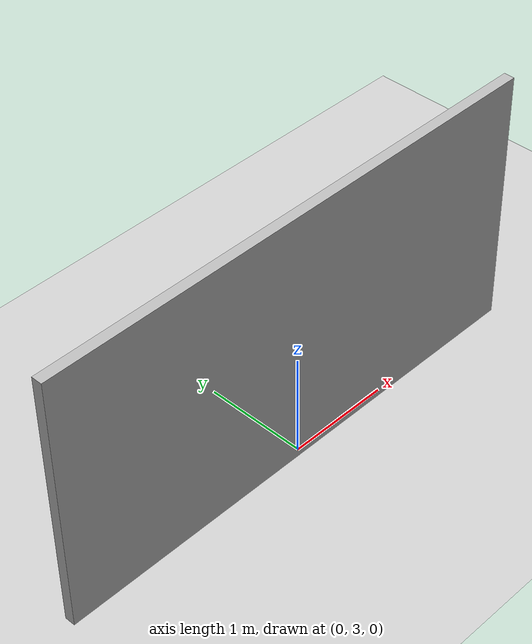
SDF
<?xml version="1.0"?>
<sdf version="1.7">
  <world name="wall_world">

    <!-- Ground (REQUIRED) -->
    <model name="ground">
      <static>true</static>
      <link name="link">
        <collision name="collision">
          <geometry>
            <plane>
              <normal>0 0 1</normal>
              <size>50 50</size>
            </plane>
          </geometry>
        </collision>
        <visual name="visual">
          <geometry>
            <plane>
              <normal>0 0 1</normal>
              <size>50 50</size>
            </plane>
          </geometry>
        </visual>
      </link>
    </model>

    <!-- Wall -->
    <model name="wall_1">
      <static>true</static>
      <pose>0 3 1.25 0 0 0</pose>
      <link name="link">
        <collision name="collision">
          <geometry>
            <box>
              <size>5 0.1 2.5</size>
            </box>
          </geometry>
        </collision>
        <visual name="visual">
          <geometry>
            <box>
              <size>5 0.1 2.5</size>
            </box>
          </geometry>
        </visual>
      </link>
    </model>

  </world>
</sdf>
